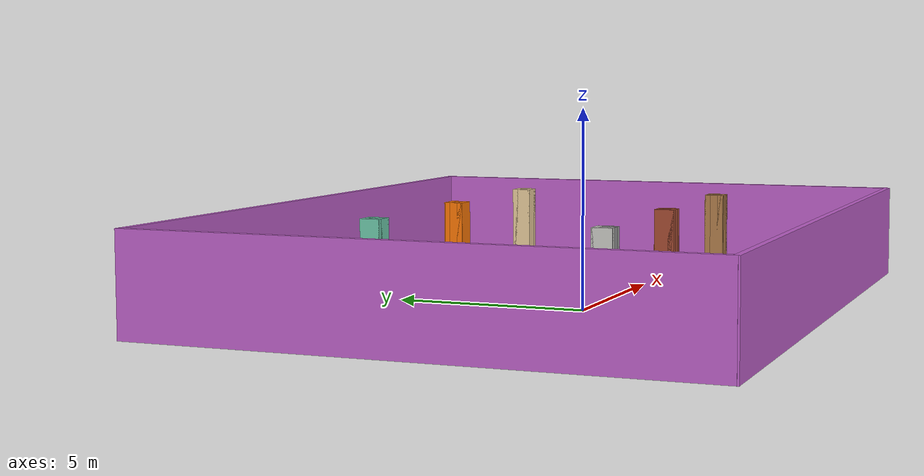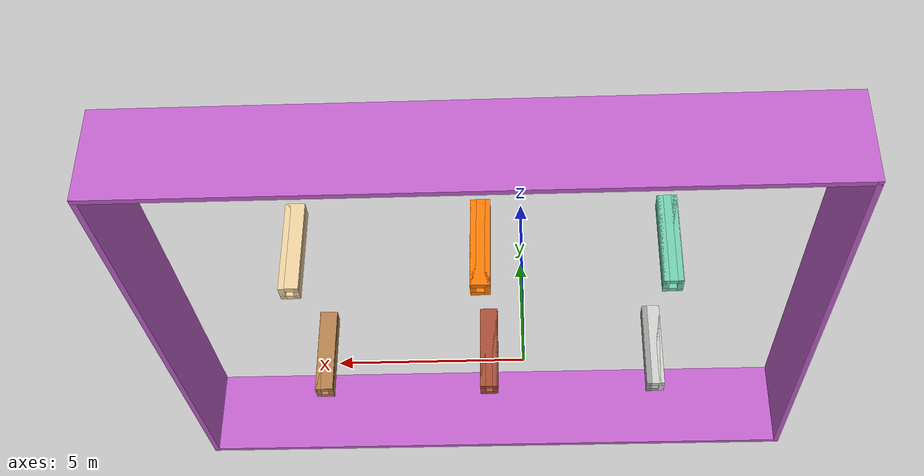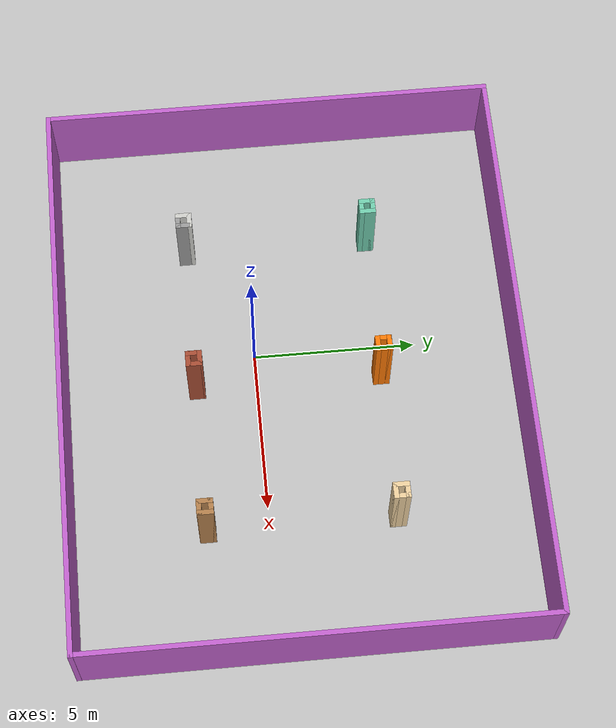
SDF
<?xml version='1.0'?>
<sdf version='1.7'>
  <model name='store_room'>
    <pose>0.997262 1.07 0 0 -0 0</pose>
    <link name='Wall_0'>
      <collision name='Wall_0_Collision'>
        <geometry>
          <box>
            <size>0.5 0.15 2.5</size>
          </box>
        </geometry>
        <pose>0 0 1.25 0 -0 0</pose>
      </collision>
      <visual name='Wall_0_Visual'>
        <pose>0 0 1.25 0 -0 0</pose>
        <geometry>
          <box>
            <size>0.5 0.15 2.5</size>
          </box>
        </geometry>
        <material>
          <script>
            <uri>file://media/materials/scripts/gazebo.material</uri>
            <name>Gazebo/Bricks</name>
          </script>
          <ambient>1 1 1 1</ambient>
        </material>
        <meta>
          <layer>0</layer>
        </meta>
      </visual>
      <pose>-0.002262 -2.75 0 0 -0 3.14159</pose>
    </link>
    <link name='Wall_24'>
      <collision name='Wall_24_Collision'>
        <geometry>
          <box>
            <size>0.5 0.15 2.5</size>
          </box>
        </geometry>
        <pose>0 0 1.25 0 -0 0</pose>
      </collision>
      <visual name='Wall_24_Visual'>
        <pose>0 0 1.25 0 -0 0</pose>
        <geometry>
          <box>
            <size>0.5 0.15 2.5</size>
          </box>
        </geometry>
        <material>
          <script>
            <uri>file://media/materials/scripts/gazebo.material</uri>
            <name>Gazebo/Bricks</name>
          </script>
          <ambient>1 1 1 1</ambient>
        </material>
        <meta>
          <layer>0</layer>
        </meta>
      </visual>
      <pose>-0.177262 -2.925 0 0 -0 -1.5708</pose>
    </link>
    <link name='Wall_25'>
      <collision name='Wall_25_Collision'>
        <geometry>
          <box>
            <size>0.5 0.15 2.5</size>
          </box>
        </geometry>
        <pose>0 0 1.25 0 -0 0</pose>
      </collision>
      <visual name='Wall_25_Visual'>
        <pose>0 0 1.25 0 -0 0</pose>
        <geometry>
          <box>
            <size>0.5 0.15 2.5</size>
          </box>
        </geometry>
        <material>
          <script>
            <uri>file://media/materials/scripts/gazebo.material</uri>
            <name>Gazebo/Bricks</name>
          </script>
          <ambient>1 1 1 1</ambient>
        </material>
        <meta>
          <layer>0</layer>
        </meta>
      </visual>
      <pose>-0.002262 -3.1 0 0 -0 0</pose>
    </link>
    <link name='Wall_26'>
      <collision name='Wall_26_Collision'>
        <geometry>
          <box>
            <size>0.5 0.15 2.5</size>
          </box>
        </geometry>
        <pose>0 0 1.25 0 -0 0</pose>
      </collision>
      <visual name='Wall_26_Visual'>
        <pose>0 0 1.25 0 -0 0</pose>
        <geometry>
          <box>
            <size>0.5 0.15 2.5</size>
          </box>
        </geometry>
        <material>
          <script>
            <uri>file://media/materials/scripts/gazebo.material</uri>
            <name>Gazebo/Bricks</name>
          </script>
          <ambient>1 1 1 1</ambient>
        </material>
        <meta>
          <layer>0</layer>
        </meta>
      </visual>
      <pose>0.172738 -2.925 0 0 -0 1.5708</pose>
    </link>
    <link name='Wall_31'>
      <collision name='Wall_31_Collision'>
        <geometry>
          <box>
            <size>0.5 0.15 2.5</size>
          </box>
        </geometry>
        <pose>0 0 1.25 0 -0 0</pose>
      </collision>
      <visual name='Wall_31_Visual'>
        <pose>0 0 1.25 0 -0 0</pose>
        <geometry>
          <box>
            <size>0.5 0.15 2.5</size>
          </box>
        </geometry>
        <material>
          <script>
            <uri>file://media/materials/scripts/gazebo.material</uri>
            <name>Gazebo/Wood</name>
          </script>
          <ambient>1 1 1 1</ambient>
        </material>
        <meta>
          <layer>0</layer>
        </meta>
      </visual>
      <pose>4.52274 -2.925 0 0 -0 -1.5708</pose>
    </link>
    <link name='Wall_32'>
      <collision name='Wall_32_Collision'>
        <geometry>
          <box>
            <size>0.5 0.15 2.5</size>
          </box>
        </geometry>
        <pose>0 0 1.25 0 -0 0</pose>
      </collision>
      <visual name='Wall_32_Visual'>
        <pose>0 0 1.25 0 -0 0</pose>
        <geometry>
          <box>
            <size>0.5 0.15 2.5</size>
          </box>
        </geometry>
        <material>
          <script>
            <uri>file://media/materials/scripts/gazebo.material</uri>
            <name>Gazebo/Wood</name>
          </script>
          <ambient>1 1 1 1</ambient>
        </material>
        <meta>
          <layer>0</layer>
        </meta>
      </visual>
      <pose>4.69774 -3.1 0 0 -0 0</pose>
    </link>
    <link name='Wall_33'>
      <collision name='Wall_33_Collision'>
        <geometry>
          <box>
            <size>0.5 0.15 2.5</size>
          </box>
        </geometry>
        <pose>0 0 1.25 0 -0 0</pose>
      </collision>
      <visual name='Wall_33_Visual'>
        <pose>0 0 1.25 0 -0 0</pose>
        <geometry>
          <box>
            <size>0.5 0.15 2.5</size>
          </box>
        </geometry>
        <material>
          <script>
            <uri>file://media/materials/scripts/gazebo.material</uri>
            <name>Gazebo/Wood</name>
          </script>
          <ambient>1 1 1 1</ambient>
        </material>
        <meta>
          <layer>0</layer>
        </meta>
      </visual>
      <pose>4.87274 -2.925 0 0 -0 1.5708</pose>
    </link>
    <link name='Wall_34'>
      <collision name='Wall_34_Collision'>
        <geometry>
          <box>
            <size>0.5 0.15 2.5</size>
          </box>
        </geometry>
        <pose>0 0 1.25 0 -0 0</pose>
      </collision>
      <visual name='Wall_34_Visual'>
        <pose>0 0 1.25 0 -0 0</pose>
        <geometry>
          <box>
            <size>0.5 0.15 2.5</size>
          </box>
        </geometry>
        <material>
          <script>
            <uri>file://media/materials/scripts/gazebo.material</uri>
            <name>Gazebo/Wood</name>
          </script>
          <ambient>1 1 1 1</ambient>
        </material>
        <meta>
          <layer>0</layer>
        </meta>
      </visual>
      <pose>4.69774 -2.75 0 0 -0 3.14159</pose>
    </link>
    <link name='Wall_37'>
      <collision name='Wall_37_Collision'>
        <geometry>
          <box>
            <size>0.5 0.15 2.5</size>
          </box>
        </geometry>
        <pose>0 0 1.25 0 -0 0</pose>
      </collision>
      <visual name='Wall_37_Visual'>
        <pose>0 0 1.25 0 -0 0</pose>
        <geometry>
          <box>
            <size>0.5 0.15 2.5</size>
          </box>
        </geometry>
        <material>
          <script>
            <uri>file://media/materials/scripts/gazebo.material</uri>
            <name>Gazebo/Grey</name>
          </script>
          <ambient>1 1 1 1</ambient>
        </material>
        <meta>
          <layer>0</layer>
        </meta>
      </visual>
      <pose>-4.52726 -2.925 0 0 -0 1.5708</pose>
    </link>
    <link name='Wall_38'>
      <collision name='Wall_38_Collision'>
        <geometry>
          <box>
            <size>0.5 0.15 2.5</size>
          </box>
        </geometry>
        <pose>0 0 1.25 0 -0 0</pose>
      </collision>
      <visual name='Wall_38_Visual'>
        <pose>0 0 1.25 0 -0 0</pose>
        <geometry>
          <box>
            <size>0.5 0.15 2.5</size>
          </box>
        </geometry>
        <material>
          <script>
            <uri>file://media/materials/scripts/gazebo.material</uri>
            <name>Gazebo/CeilingTiled</name>
          </script>
          <ambient>1 1 1 1</ambient>
        </material>
        <meta>
          <layer>0</layer>
        </meta>
      </visual>
      <pose>-4.70226 -2.75 0 0 -0 3.14159</pose>
    </link>
    <link name='Wall_39'>
      <collision name='Wall_39_Collision'>
        <geometry>
          <box>
            <size>0.5 0.15 2.5</size>
          </box>
        </geometry>
        <pose>0 0 1.25 0 -0 0</pose>
      </collision>
      <visual name='Wall_39_Visual'>
        <pose>0 0 1.25 0 -0 0</pose>
        <geometry>
          <box>
            <size>0.5 0.15 2.5</size>
          </box>
        </geometry>
        <material>
          <script>
            <uri>file://media/materials/scripts/gazebo.material</uri>
            <name>Gazebo/CeilingTiled</name>
          </script>
          <ambient>1 1 1 1</ambient>
        </material>
        <meta>
          <layer>0</layer>
        </meta>
      </visual>
      <pose>-4.87726 -2.925 0 0 -0 -1.5708</pose>
    </link>
    <link name='Wall_40'>
      <collision name='Wall_40_Collision'>
        <geometry>
          <box>
            <size>0.5 0.15 2.5</size>
          </box>
        </geometry>
        <pose>0 0 1.25 0 -0 0</pose>
      </collision>
      <visual name='Wall_40_Visual'>
        <pose>0 0 1.25 0 -0 0</pose>
        <geometry>
          <box>
            <size>0.5 0.15 2.5</size>
          </box>
        </geometry>
        <material>
          <script>
            <uri>file://media/materials/scripts/gazebo.material</uri>
            <name>Gazebo/Grey</name>
          </script>
          <ambient>1 1 1 1</ambient>
        </material>
        <meta>
          <layer>0</layer>
        </meta>
      </visual>
      <pose>-4.70226 -3.1 0 0 -0 0</pose>
    </link>
    <link name='Wall_44'>
      <collision name='Wall_44_Collision'>
        <geometry>
          <box>
            <size>0.5 0.15 2.5</size>
          </box>
        </geometry>
        <pose>0 0 1.25 0 -0 0</pose>
      </collision>
      <visual name='Wall_44_Visual'>
        <pose>0 0 1.25 0 -0 0</pose>
        <geometry>
          <box>
            <size>0.5 0.15 2.5</size>
          </box>
        </geometry>
        <material>
          <script>
            <uri>file://media/materials/scripts/gazebo.material</uri>
            <name>Gazebo/Grey</name>
          </script>
          <ambient>0.996078 0.47451 0.0196078 1</ambient>
        </material>
        <meta>
          <layer>0</layer>
        </meta>
      </visual>
      <pose>-0.002262 2.6 0 0 -0 3.14159</pose>
    </link>
    <link name='Wall_45'>
      <collision name='Wall_45_Collision'>
        <geometry>
          <box>
            <size>0.5 0.15 2.5</size>
          </box>
        </geometry>
        <pose>0 0 1.25 0 -0 0</pose>
      </collision>
      <visual name='Wall_45_Visual'>
        <pose>0 0 1.25 0 -0 0</pose>
        <geometry>
          <box>
            <size>0.5 0.15 2.5</size>
          </box>
        </geometry>
        <material>
          <script>
            <uri>file://media/materials/scripts/gazebo.material</uri>
            <name>Gazebo/Grey</name>
          </script>
          <ambient>0.996078 0.47451 0.0196078 1</ambient>
        </material>
        <meta>
          <layer>0</layer>
        </meta>
      </visual>
      <pose>-0.177262 2.775 0 0 -0 1.5708</pose>
    </link>
    <link name='Wall_46'>
      <collision name='Wall_46_Collision'>
        <geometry>
          <box>
            <size>0.5 0.15 2.5</size>
          </box>
        </geometry>
        <pose>0 0 1.25 0 -0 0</pose>
      </collision>
      <visual name='Wall_46_Visual'>
        <pose>0 0 1.25 0 -0 0</pose>
        <geometry>
          <box>
            <size>0.5 0.15 2.5</size>
          </box>
        </geometry>
        <material>
          <script>
            <uri>file://media/materials/scripts/gazebo.material</uri>
            <name>Gazebo/Grey</name>
          </script>
          <ambient>0.996078 0.47451 0.0196078 1</ambient>
        </material>
        <meta>
          <layer>0</layer>
        </meta>
      </visual>
      <pose>-0.002262 2.95 0 0 -0 0</pose>
    </link>
    <link name='Wall_47'>
      <collision name='Wall_47_Collision'>
        <geometry>
          <box>
            <size>0.5 0.15 2.5</size>
          </box>
        </geometry>
        <pose>0 0 1.25 0 -0 0</pose>
      </collision>
      <visual name='Wall_47_Visual'>
        <pose>0 0 1.25 0 -0 0</pose>
        <geometry>
          <box>
            <size>0.5 0.15 2.5</size>
          </box>
        </geometry>
        <material>
          <script>
            <uri>file://media/materials/scripts/gazebo.material</uri>
            <name>Gazebo/Grey</name>
          </script>
          <ambient>0.996078 0.47451 0.0196078 1</ambient>
        </material>
        <meta>
          <layer>0</layer>
        </meta>
      </visual>
      <pose>0.172738 2.775 0 0 -0 -1.5708</pose>
    </link>
    <link name='Wall_50'>
      <collision name='Wall_50_Collision'>
        <geometry>
          <box>
            <size>0.5 0.15 2.5</size>
          </box>
        </geometry>
        <pose>0 0 1.25 0 -0 0</pose>
      </collision>
      <visual name='Wall_50_Visual'>
        <pose>0 0 1.25 0 -0 0</pose>
        <geometry>
          <box>
            <size>0.5 0.15 2.5</size>
          </box>
        </geometry>
        <material>
          <script>
            <uri>file://media/materials/scripts/gazebo.material</uri>
            <name>Gazebo/Grey</name>
          </script>
          <ambient>0.921569 0.807843 0.615686 1</ambient>
        </material>
        <meta>
          <layer>0</layer>
        </meta>
      </visual>
      <pose>4.69774 2.6 0 0 -0 0</pose>
    </link>
    <link name='Wall_51'>
      <collision name='Wall_51_Collision'>
        <geometry>
          <box>
            <size>0.5 0.15 2.5</size>
          </box>
        </geometry>
        <pose>0 0 1.25 0 -0 0</pose>
      </collision>
      <visual name='Wall_51_Visual'>
        <pose>0 0 1.25 0 -0 0</pose>
        <geometry>
          <box>
            <size>0.5 0.15 2.5</size>
          </box>
        </geometry>
        <material>
          <script>
            <uri>file://media/materials/scripts/gazebo.material</uri>
            <name>Gazebo/Grey</name>
          </script>
          <ambient>0.921569 0.807843 0.615686 1</ambient>
        </material>
        <meta>
          <layer>0</layer>
        </meta>
      </visual>
      <pose>4.87274 2.775 0 0 -0 1.5708</pose>
    </link>
    <link name='Wall_52'>
      <collision name='Wall_52_Collision'>
        <geometry>
          <box>
            <size>0.5 0.15 2.5</size>
          </box>
        </geometry>
        <pose>0 0 1.25 0 -0 0</pose>
      </collision>
      <visual name='Wall_52_Visual'>
        <pose>0 0 1.25 0 -0 0</pose>
        <geometry>
          <box>
            <size>0.5 0.15 2.5</size>
          </box>
        </geometry>
        <material>
          <script>
            <uri>file://media/materials/scripts/gazebo.material</uri>
            <name>Gazebo/Grey</name>
          </script>
          <ambient>0.921569 0.807843 0.615686 1</ambient>
        </material>
        <meta>
          <layer>0</layer>
        </meta>
      </visual>
      <pose>4.69774 2.95 0 0 -0 3.14159</pose>
    </link>
    <link name='Wall_53'>
      <collision name='Wall_53_Collision'>
        <geometry>
          <box>
            <size>0.5 0.15 2.5</size>
          </box>
        </geometry>
        <pose>0 0 1.25 0 -0 0</pose>
      </collision>
      <visual name='Wall_53_Visual'>
        <pose>0 0 1.25 0 -0 0</pose>
        <geometry>
          <box>
            <size>0.5 0.15 2.5</size>
          </box>
        </geometry>
        <material>
          <script>
            <uri>file://media/materials/scripts/gazebo.material</uri>
            <name>Gazebo/Grey</name>
          </script>
          <ambient>0.921569 0.807843 0.615686 1</ambient>
        </material>
        <meta>
          <layer>0</layer>
        </meta>
      </visual>
      <pose>4.52274 2.775 0 0 -0 -1.5708</pose>
    </link>
    <link name='Wall_57'>
      <collision name='Wall_57_Collision'>
        <geometry>
          <box>
            <size>0.5 0.15 2.5</size>
          </box>
        </geometry>
        <pose>0 0 1.25 0 -0 0</pose>
      </collision>
      <visual name='Wall_57_Visual'>
        <pose>0 0 1.25 0 -0 0</pose>
        <geometry>
          <box>
            <size>0.5 0.15 2.5</size>
          </box>
        </geometry>
        <material>
          <script>
            <uri>file://media/materials/scripts/gazebo.material</uri>
            <name>Gazebo/Grey</name>
          </script>
          <ambient>0.435294 0.796078 0.67451 1</ambient>
        </material>
        <meta>
          <layer>0</layer>
        </meta>
      </visual>
      <pose>-4.70226 2.6 0 0 -0 3.14159</pose>
    </link>
    <link name='Wall_58'>
      <collision name='Wall_58_Collision'>
        <geometry>
          <box>
            <size>0.5 0.15 2.5</size>
          </box>
        </geometry>
        <pose>0 0 1.25 0 -0 0</pose>
      </collision>
      <visual name='Wall_58_Visual'>
        <pose>0 0 1.25 0 -0 0</pose>
        <geometry>
          <box>
            <size>0.5 0.15 2.5</size>
          </box>
        </geometry>
        <material>
          <script>
            <uri>file://media/materials/scripts/gazebo.material</uri>
            <name>Gazebo/Grey</name>
          </script>
          <ambient>0.435294 0.796078 0.67451 1</ambient>
        </material>
        <meta>
          <layer>0</layer>
        </meta>
      </visual>
      <pose>-4.87726 2.775 0 0 -0 1.5708</pose>
    </link>
    <link name='Wall_59'>
      <collision name='Wall_59_Collision'>
        <geometry>
          <box>
            <size>0.5 0.15 2.5</size>
          </box>
        </geometry>
        <pose>0 0 1.25 0 -0 0</pose>
      </collision>
      <visual name='Wall_59_Visual'>
        <pose>0 0 1.25 0 -0 0</pose>
        <geometry>
          <box>
            <size>0.5 0.15 2.5</size>
          </box>
        </geometry>
        <material>
          <script>
            <uri>file://media/materials/scripts/gazebo.material</uri>
            <name>Gazebo/Grey</name>
          </script>
          <ambient>0.435294 0.796078 0.67451 1</ambient>
        </material>
        <meta>
          <layer>0</layer>
        </meta>
      </visual>
      <pose>-4.70226 2.95 0 0 -0 0</pose>
    </link>
    <link name='Wall_60'>
      <collision name='Wall_60_Collision'>
        <geometry>
          <box>
            <size>0.5 0.15 2.5</size>
          </box>
        </geometry>
        <pose>0 0 1.25 0 -0 0</pose>
      </collision>
      <visual name='Wall_60_Visual'>
        <pose>0 0 1.25 0 -0 0</pose>
        <geometry>
          <box>
            <size>0.5 0.15 2.5</size>
          </box>
        </geometry>
        <material>
          <script>
            <uri>file://media/materials/scripts/gazebo.material</uri>
            <name>Gazebo/Grey</name>
          </script>
          <ambient>0.435294 0.796078 0.67451 1</ambient>
        </material>
        <meta>
          <layer>0</layer>
        </meta>
      </visual>
      <pose>-4.52726 2.775 0 0 -0 -1.5708</pose>
    </link>
    <link name='Wall_65'>
      <collision name='Wall_65_Collision'>
        <geometry>
          <box>
            <size>14 0.15 2.5</size>
          </box>
        </geometry>
        <pose>0 0 1.25 0 -0 0</pose>
      </collision>
      <visual name='Wall_65_Visual'>
        <pose>0 0 1.25 0 -0 0</pose>
        <geometry>
          <box>
            <size>14 0.15 2.5</size>
          </box>
        </geometry>
        <material>
          <script>
            <uri>file://media/materials/scripts/gazebo.material</uri>
            <name>Gazebo/Grey</name>
          </script>
          <ambient>0.752941 0.380392 0.796078 1</ambient>
        </material>
        <meta>
          <layer>0</layer>
        </meta>
      </visual>
      <pose>8.72274 0.024999 0 0 -0 1.5708</pose>
    </link>
    <link name='Wall_68'>
      <collision name='Wall_68_Collision'>
        <geometry>
          <box>
            <size>14 0.15 2.5</size>
          </box>
        </geometry>
        <pose>0 0 1.25 0 -0 0</pose>
      </collision>
      <visual name='Wall_68_Visual'>
        <pose>0 0 1.25 0 -0 0</pose>
        <geometry>
          <box>
            <size>14 0.15 2.5</size>
          </box>
        </geometry>
        <material>
          <script>
            <uri>file://media/materials/scripts/gazebo.material</uri>
            <name>Gazebo/Grey</name>
          </script>
          <ambient>0.752941 0.380392 0.796078 1</ambient>
        </material>
        <meta>
          <layer>0</layer>
        </meta>
      </visual>
      <pose>-8.72726 0.024999 0 0 -0 1.5708</pose>
    </link>
    <link name='Wall_69'>
      <collision name='Wall_69_Collision'>
        <geometry>
          <box>
            <size>17.6 0.15 2.5</size>
          </box>
        </geometry>
        <pose>0 0 1.25 0 -0 0</pose>
      </collision>
      <visual name='Wall_69_Visual'>
        <pose>0 0 1.25 0 -0 0</pose>
        <geometry>
          <box>
            <size>17.6 0.15 2.5</size>
          </box>
        </geometry>
        <material>
          <script>
            <uri>file://media/materials/scripts/gazebo.material</uri>
            <name>Gazebo/Grey</name>
          </script>
          <ambient>0.752941 0.380392 0.796078 1</ambient>
        </material>
        <meta>
          <layer>0</layer>
        </meta>
      </visual>
      <pose>-0.002262 6.95 0 0 -0 0</pose>
    </link>
    <link name='Wall_73'>
      <collision name='Wall_73_Collision'>
        <geometry>
          <box>
            <size>17.6 0.15 2.5</size>
          </box>
        </geometry>
        <pose>0 0 1.25 0 -0 0</pose>
      </collision>
      <visual name='Wall_73_Visual'>
        <pose>0 0 1.25 0 -0 0</pose>
        <geometry>
          <box>
            <size>17.6 0.15 2.5</size>
          </box>
        </geometry>
        <material>
          <script>
            <uri>file://media/materials/scripts/gazebo.material</uri>
            <name>Gazebo/Grey</name>
          </script>
          <ambient>0.752941 0.380392 0.796078 1</ambient>
        </material>
        <meta>
          <layer>0</layer>
        </meta>
      </visual>
      <pose>0.002263 -6.95 0 0 -0 3.14159</pose>
    </link>
    <static>1</static>
  </model>
</sdf>
